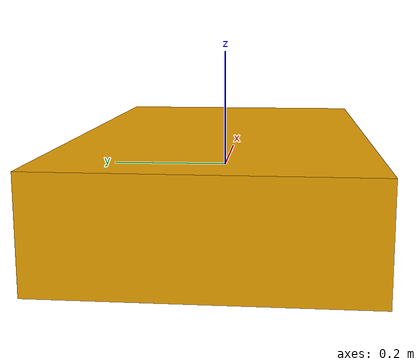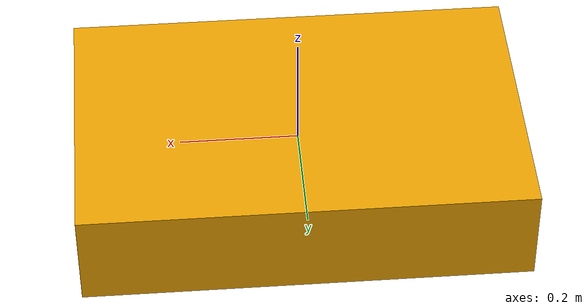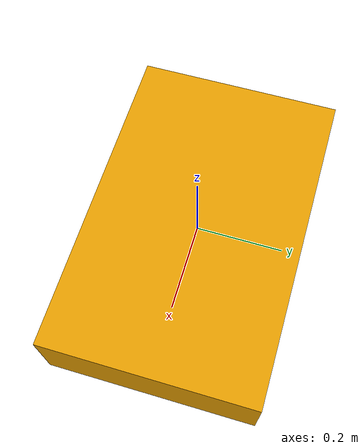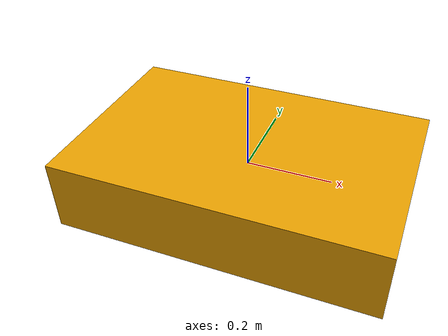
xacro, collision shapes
<?xml version='1.0' encoding='utf-8'?>
<robot name='coro_mark_sensor_config_1' xmlns:xacro="http://ros.org/wiki/xacro">
  <xacro:arg name="name" default="coro_mark_sensor_config_1"/>
  <xacro:property name="robot_namespace" value="$(arg name)"/>
  <link name='${robot_namespace}/base_link'>
    <inertial>
      <origin xyz='0 0 0' rpy='0 -0 0'/>
      <mass value='2.217'/>
      <inertia ixx='0.0207' ixy='0' ixz='0' iyy='0.0207' iyz='0' izz='0.0333'/>
    </inertial>
    <collision name='base_link_inertia_collision'>
      <origin xyz='0 0 -0.025' rpy='0 -0 0'/>
      <geometry>
        <box size='0.75 0.482 0.17'/>
      </geometry>
    </collision>
    <visual name='plate1_visual'>
      <origin xyz='0 0 0' rpy='0 -0 0'/>
      <geometry>
        <box size='0.14 0.09 0.001'/>
      </geometry>
    </visual>
    <visual name='plate2_visual'>
      <origin xyz='0 0 -0.04' rpy='0 -0 0'/>
      <geometry>
        <box size='0.14 0.14 0.001'/>
      </geometry>
    </visual>
    <visual name='plate3_visual'>
      <origin xyz='0 0 -0.07' rpy='0 -0 0'/>
      <geometry>
        <box size='0.14 0.14 0.001'/>
      </geometry>
    </visual>
    <visual name='plate4_visual'>
      <origin xyz='0.015 0 -0.11' rpy='0 -0 0'/>
      <geometry>
        <box size='0.17 0.14 0.001'/>
      </geometry>
    </visual>
    <visual name='computer_visual'>
      <origin xyz='0 0 -0.055' rpy='0 -0 0'/>
      <geometry>
        <box size='0.12 0.12 0.03'/>
      </geometry>
    </visual>
    <visual name='battery_visual'>
      <origin xyz='0 0 -0.09' rpy='0 -0 0'/>
      <geometry>
        <box size='0.14 0.08 0.04'/>
      </geometry>
    </visual>
    <visual name='antenna1_visual'>
      <origin xyz='-0.025 -0.065 0.01' rpy='0 -0 0'/>
      <geometry>
        <cylinder radius='0.005' length='0.1'/>
      </geometry>
    </visual>
    <visual name='prop_guard1_visual'>
      <origin xyz='0.314 0 0.03' rpy='1.5708 -0 0'/>
      <geometry>
        <cylinder radius='0.002' length='0.374'/>
      </geometry>
    </visual>
    <visual name='prop_guard2_visual'>
      <origin xyz='0 0.24 0.03' rpy='0 1.5708 0'/>
      <geometry>
        <cylinder radius='0.002' length='0.57'/>
      </geometry>
    </visual>
    <visual name='prop_guard3_visual'>
      <origin xyz='-0.314 0 0.03' rpy='1.5708 -0 0'/>
      <geometry>
        <cylinder radius='0.002' length='0.374'/>
      </geometry>
    </visual>
    <visual name='prop_guard4_visual'>
      <origin xyz='0 -0.24 0.03' rpy='0 1.5708 0'/>
      <geometry>
        <cylinder radius='0.002' length='0.57'/>
      </geometry>
    </visual>
    <visual name='prop_guard5_visual'>
      <origin xyz='0.3 0.213 0.03' rpy='1.5708 -0 0.52'/>
      <geometry>
        <cylinder radius='0.002' length='0.062'/>
      </geometry>
    </visual>
    <visual name='prop_guard6_visual'>
      <origin xyz='0.3 -0.213 0.03' rpy='1.5708 -0 -0.52'/>
      <geometry>
        <cylinder radius='0.002' length='0.062'/>
      </geometry>
    </visual>
    <visual name='prop_guard7_visual'>
      <origin xyz='-0.3 0.213 0.03' rpy='1.5708 -0 -0.52'/>
      <geometry>
        <cylinder radius='0.002' length='0.062'/>
      </geometry>
    </visual>
    <visual name='prop_guard8_visual'>
      <origin xyz='-0.3 -0.213 0.03' rpy='1.5708 -0 0.52'/>
      <geometry>
        <cylinder radius='0.002' length='0.062'/>
      </geometry>
    </visual>
    <visual name='prop_guard9_visual'>
      <origin xyz='0.314 0.187 0.012' rpy='0 -0 0'/>
      <geometry>
        <cylinder radius='0.004' length='0.04'/>
      </geometry>
    </visual>
    <visual name='prop_guard10_visual'>
      <origin xyz='0.314 -0.187 0.012' rpy='0 -0 0'/>
      <geometry>
        <cylinder radius='0.004' length='0.04'/>
      </geometry>
    </visual>
    <visual name='prop_guard11_visual'>
      <origin xyz='-0.314 0.187 0.012' rpy='0 -0 0'/>
      <geometry>
        <cylinder radius='0.004' length='0.04'/>
      </geometry>
    </visual>
    <visual name='prop_guard12_visual'>
      <origin xyz='-0.314 -0.187 0.012' rpy='0 -0 0'/>
      <geometry>
        <cylinder radius='0.004' length='0.04'/>
      </geometry>
    </visual>
    <visual name='prop_guard13_visual'>
      <origin xyz='0.25 0.15 -0.005' rpy='1.5708 0 -1.05'/>
      <geometry>
        <cylinder radius='0.004' length='0.144'/>
      </geometry>
    </visual>
    <visual name='prop_guard14_visual'>
      <origin xyz='0.25 -0.15 -0.005' rpy='1.5708 -0 1.05'/>
      <geometry>
        <cylinder radius='0.004' length='0.144'/>
      </geometry>
    </visual>
    <visual name='prop_guard15_visual'>
      <origin xyz='-0.25 0.15 -0.005' rpy='1.5708 -0 1.05'/>
      <geometry>
        <cylinder radius='0.004' length='0.144'/>
      </geometry>
    </visual>
    <visual name='prop_guard16_visual'>
      <origin xyz='-0.25 -0.15 -0.005' rpy='1.5708 0 -1.05'/>
      <geometry>
        <cylinder radius='0.004' length='0.144'/>
      </geometry>
    </visual>
    <visual name='arm1_visual'>
      <origin xyz='0.13 0.08 -0.005' rpy='0 -0 0.52'/>
      <geometry>
        <box size='0.19 0.03 0.01'/>
      </geometry>
    </visual>
    <visual name='arm2_visual'>
      <origin xyz='0.13 -0.08 -0.005' rpy='0 0 -0.52'/>
      <geometry>
        <box size='0.19 0.03 0.01'/>
      </geometry>
    </visual>
    <visual name='arm3_visual'>
      <origin xyz='-0.13 0.08 -0.005' rpy='0 0 -0.52'/>
      <geometry>
        <box size='0.19 0.03 0.01'/>
      </geometry>
    </visual>
    <visual name='arm4_visual'>
      <origin xyz='-0.13 -0.08 -0.005' rpy='0 -0 0.52'/>
      <geometry>
        <box size='0.19 0.03 0.01'/>
      </geometry>
    </visual>
    <visual name='arm1a_visual'>
      <origin xyz='0.06 0.04 -0.025' rpy='0 -0 0.02'/>
      <geometry>
        <box size='0.02 0.02 0.03'/>
      </geometry>
    </visual>
    <visual name='arm2a_visual'>
      <origin xyz='0.06 -0.04 -0.025' rpy='0 -0 0.02'/>
      <geometry>
        <box size='0.02 0.02 0.03'/>
      </geometry>
    </visual>
    <visual name='arm3a_visual'>
      <origin xyz='-0.06 0.04 -0.025' rpy='0 -0 0.02'/>
      <geometry>
        <box size='0.02 0.02 0.03'/>
      </geometry>
    </visual>
    <visual name='arm4a_visual'>
      <origin xyz='-0.06 -0.04 -0.025' rpy='0 -0 0.02'/>
      <geometry>
        <box size='0.02 0.02 0.03'/>
      </geometry>
    </visual>
    <visual name='motor1_visual'>
      <origin xyz='0.2 0.12 0.01' rpy='0 -0 0'/>
      <geometry>
        <cylinder radius='0.015' length='0.02'/>
      </geometry>
    </visual>
    <visual name='motor2_visual'>
      <origin xyz='-0.2 0.12 0.01' rpy='0 -0 0'/>
      <geometry>
        <cylinder radius='0.015' length='0.02'/>
      </geometry>
    </visual>
    <visual name='motor3_visual'>
      <origin xyz='0.2 -0.12 0.01' rpy='0 -0 0'/>
      <geometry>
        <cylinder radius='0.015' length='0.02'/>
      </geometry>
    </visual>
    <visual name='motor4_visual'>
      <origin xyz='-0.2 -0.12 0.01' rpy='0 -0 0'/>
      <geometry>
        <cylinder radius='0.015' length='0.02'/>
      </geometry>
    </visual>
    <visual name='lightbar_visual'>
      <origin xyz='0.095 -0.06 -0.032' rpy='0 -0 0'/>
      <geometry>
        <box size='0.001 0.02 0.06'/>
      </geometry>
    </visual>
    <visual name='d435_dae_front_visual'>
      <origin xyz='0.075 0 -0.11' rpy='0 -0 0'/>
      <geometry>
        <mesh filename='package://coro_mark_sensor_config_1/meshes/realsense_d435.dae' scale='0.001 0.001 0.001'/>
      </geometry>
    </visual>
  </link>
  <sensor name='imu_sensor' update_rate='250'>
    <parent link='${robot_namespace}/base_link'/>
    <origin xyz='0 0 0' rpy='0 -0 0'/>
  </sensor>
  <sensor name='air_pressure' update_rate='20'>
    <parent link='${robot_namespace}/base_link'/>
    <origin xyz='0 0 0' rpy='0 -0 0'/>
  </sensor>
  <sensor name='magnetometer' update_rate='20'>
    <parent link='${robot_namespace}/base_link'/>
    <origin xyz='0 0 0' rpy='0 -0 0'/>
  </sensor>
  <sensor name='rgbd_front' update_rate='30'>
    <parent link='${robot_namespace}/base_link'/>
    <origin xyz='0.102 0 -0.098' rpy='0 -0 0'/>
    <camera>
      <image width='640' height='360' format='R8G8B8' hfov='1.50098' near='0.01' far='300' />
    </camera>
  </sensor>
  <sensor name='top_laser' update_rate='50'>
    <parent link='${robot_namespace}/base_link'/>
    <origin xyz='-0.07 0.03 0.03' rpy='0 1.57 0'/>
  </sensor>
  <sensor name='bottom_laser' update_rate='50'>
    <parent link='${robot_namespace}/base_link'/>
    <origin xyz='-0.09 0.04 -0.03' rpy='0 -1.57 0'/>
  </sensor>
  <link name='${robot_namespace}/rotor_0'>
    <inertial>
      <origin xyz='0 0 0' rpy='0 -0 0'/>
      <mass value='0.012'/>
      <inertia ixx='8e-07' ixy='0' ixz='0' iyy='5e-05' iyz='0' izz='5e-05'/>
    </inertial>
    <collision name='rotor_0_collision'>
      <origin xyz='0 0 0' rpy='0 -0 0'/>
      <geometry>
        <cylinder radius='0.11' length='0.01'/>
      </geometry>
    </collision>
    <visual name='rotor_0_visual'>
      <origin xyz='0 0 0' rpy='0 -0 0'/>
      <geometry>
        <mesh filename='package://coro_mark_sensor_config_1/meshes/propeller_ccw.dae' scale='0.11 0.11 0.11'/>
      </geometry>
    </visual>
  </link>
  <link name='${robot_namespace}/rotor_1'>
    <inertial>
      <origin xyz='0 0 0' rpy='0 -0 0'/>
      <mass value='0.012'/>
      <inertia ixx='8e-07' ixy='0' ixz='0' iyy='5e-05' iyz='0' izz='5e-05'/>
    </inertial>
    <collision name='rotor_1_collision'>
      <origin xyz='0 0 0' rpy='0 -0 0'/>
      <geometry>
        <cylinder radius='0.11' length='0.01'/>
      </geometry>
    </collision>
    <visual name='rotor_1_visual'>
      <origin xyz='0 0 0' rpy='0 -0 0'/>
      <geometry>
        <mesh filename='package://coro_mark_sensor_config_1/meshes/propeller_ccw.dae' scale='0.11 0.11 0.11'/>
      </geometry>
    </visual>
  </link>
  <link name='${robot_namespace}/rotor_2'>
    <inertial>
      <origin xyz='0 0 0' rpy='0 -0 0'/>
      <mass value='0.012'/>
      <inertia ixx='8e-07' ixy='0' ixz='0' iyy='5e-05' iyz='0' izz='5e-05'/>
    </inertial>
    <collision name='rotor_2_collision'>
      <origin xyz='0 0 0' rpy='0 -0 0'/>
      <geometry>
        <cylinder radius='0.11' length='0.01'/>
      </geometry>
    </collision>
    <visual name='rotor_2_visual'>
      <origin xyz='0 0 0' rpy='0 -0 0'/>
      <geometry>
        <mesh filename='package://coro_mark_sensor_config_1/meshes/propeller_cw.dae' scale='0.11 0.11 0.11'/>
      </geometry>
    </visual>
  </link>
  <link name='${robot_namespace}/rotor_3'>
    <inertial>
      <origin xyz='0 0 0' rpy='0 -0 0'/>
      <mass value='0.012'/>
      <inertia ixx='8e-07' ixy='0' ixz='0' iyy='5e-05' iyz='0' izz='5e-05'/>
    </inertial>
    <collision name='rotor_3_collision'>
      <origin xyz='0 0 0' rpy='0 -0 0'/>
      <geometry>
        <cylinder radius='0.11' length='0.01'/>
      </geometry>
    </collision>
    <visual name='rotor_3_visual'>
      <origin xyz='0 0 0' rpy='0 -0 0'/>
      <geometry>
        <mesh filename='package://coro_mark_sensor_config_1/meshes/propeller_cw.dae' scale='0.11 0.11 0.11'/>
      </geometry>
    </visual>
  </link>
  <joint name='rotor_0_joint' type='revolute'>
    <origin xyz='0.2 -0.12 0.03' rpy='0 -0 0'/>
    <parent link='${robot_namespace}/base_link'/>
    <child link='${robot_namespace}/rotor_0'/>
    <dynamics damping='0' friction='0' />
    <axis xyz='0 0 1'/>
    <limit lower='-1e+16' upper='1e+16' effort='-1' velocity='-1'/>
  </joint>
  <joint name='rotor_1_joint' type='revolute'>
    <origin xyz='-0.2 0.12 0.03' rpy='0 -0 0'/>
    <parent link='${robot_namespace}/base_link'/>
    <child link='${robot_namespace}/rotor_1'/>
    <dynamics damping='0' friction='0' />
    <axis xyz='0 0 1'/>
    <limit lower='-1e+16' upper='1e+16' effort='-1' velocity='-1'/>
  </joint>
  <joint name='rotor_2_joint' type='revolute'>
    <origin xyz='0.2 0.12 0.03' rpy='0 -0 0'/>
    <parent link='${robot_namespace}/base_link'/>
    <child link='${robot_namespace}/rotor_2'/>
    <dynamics damping='0' friction='0' />
    <axis xyz='0 0 1'/>
    <limit lower='-1e+16' upper='1e+16' effort='-1' velocity='-1'/>
  </joint>
  <joint name='rotor_3_joint' type='revolute'>
    <origin xyz='-0.2 -0.12 0.03' rpy='0 -0 0'/>
    <parent link='${robot_namespace}/base_link'/>
    <child link='${robot_namespace}/rotor_3'/>
    <dynamics damping='0' friction='0' />
    <axis xyz='0 0 1'/>
    <limit lower='-1e+16' upper='1e+16' effort='-1' velocity='-1'/>
  </joint>
</robot>
